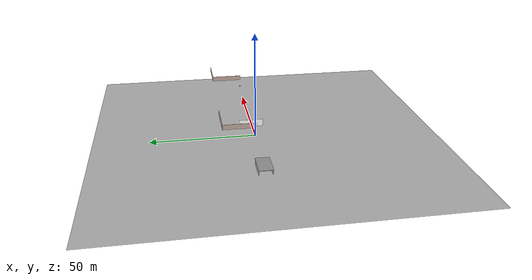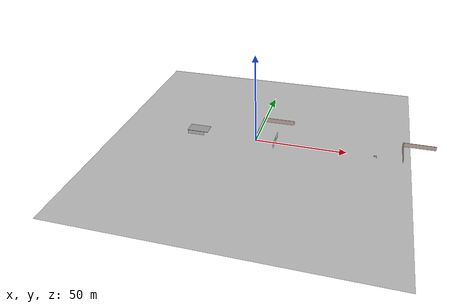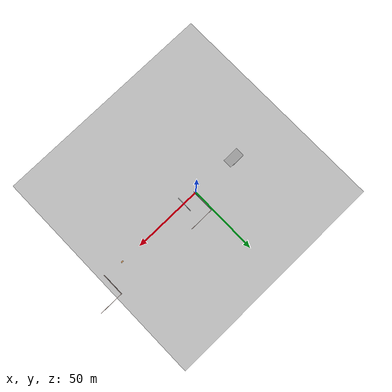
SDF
<sdf version="1.5">
 <world name="default">
  <spherical_coordinates>
   <latitude_deg>48.878922</latitude_deg>
   <longitude_deg>2.367782</longitude_deg>
  </spherical_coordinates>
  <physics type="ode">
   <real_time_update_rate>1000</real_time_update_rate>
   <max_step_size>0.001</max_step_size>
   <real_time_factor>1.0</real_time_factor>
   <max_contacts>20</max_contacts>
   <gravity>0 0 -9.81</gravity>
   <magnetic_field>0.1062e-6 20.8038e-6 -43.2881e-6</magnetic_field>
   <ode>
    <solver>
     <type>world</type>
     <min_step_size>0.0001</min_step_size>
     <iters>50</iters>
     <precon_iters>0</precon_iters>
     <sor>1.4</sor>
     <use_dynamic_moi_rescaling>1</use_dynamic_moi_rescaling>
    </solver>
    <constraints>
     <cfm>0</cfm>
     <erp>0.2</erp>
     <contact_max_correcting_vel>100.0</contact_max_correcting_vel>
     <contact_surface_layer>0.001</contact_surface_layer>
    </constraints>
   </ode>
  </physics>
  <atmosphere type="adiabatic">
   <temperature>298.15</temperature>
   <pressure>101325</pressure>
   <temperature_gradient>-0.0065</temperature_gradient>
  </atmosphere>
  <plugin name="fwman" filename="libsphinx_fwman.so">
   <spawn_point name="default"><pose>0 0 0.2 0 0 0</pose></spawn_point>
  </plugin>
  <plugin name="wind" filename="libsphinx_wind.so">
   <magnitude_mean>0.0</magnitude_mean>
   <direction_mean>0.0</direction_mean>
   <elevation_mean>0.0</elevation_mean>
   <magnitude_time_for_rise>10.0</magnitude_time_for_rise>
   <direction_time_for_rise>30.0</direction_time_for_rise>
   <elevation_time_for_rise>0.0</elevation_time_for_rise>
   <magnitude_expr>val*(1+0.05*sin(2*pi*time/15))</magnitude_expr>
   <direction_expr>360*time/60</direction_expr>
   <elevation_expr>0.03*noise()</elevation_expr>
  </plugin>
  <include><uri>model://grass_plane</uri></include>
  <include><uri>model://sun</uri></include>
  <scene>
   <sky><time>8</time><clouds><speed>12</speed></clouds></sky>
   <grid>false</grid>
   <origin_visual>false</origin_visual>
  </scene>
  <model name="hallway">
   <static>true</static>
   <pose>-33 3.5 -1.0 0 0 0</pose>
   <include><uri>model://hallway</uri></include>
  </model>
  <model name="wall1">
   <static>true</static>
   <pose>11.18 5.7 3.49 0 0 0</pose>
   <include><uri>model://wall</uri></include>
  </model>
  <model name="window">
   <static>true</static>
   <pose>9.3 0.7 0 0 0 1.57</pose>
   <include><uri>model://window_door</uri></include>
  </model>
  <model name="table">
   <static>true</static>
   <pose>65 -0.5 0 0 0 0</pose>
   <include><uri>model://table</uri></include>
  </model>
  <model name="wall2">
   <static>true</static>
   <pose>89 4 0 0 0 0</pose>
   <include><uri>model://wall</uri></include>
  </model>
 </world>
</sdf>

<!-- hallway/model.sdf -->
<sdf version="1.5">
  <model name="model">
    <pose>-1.08827 -2.32025 2.24903 0 -0 0</pose>
    <link name="unit_box_2">
      <pose>0.676422 -0.058315 0.998142 0 -0 0</pose>
      <gravity>1</gravity>
      <self_collide>0</self_collide>
      <kinematic>0</kinematic>
      <visual name="unit_box_2_visual">
        <pose>0 0 0 0 -0 0</pose>
        <geometry>
          <box>
            <size>11.8887 6.43251 0.213817</size>
          </box>
        </geometry>
        <material>
          <script>
            <uri>model://hallway/materials/scripts</uri>
            <uri>model://hallway/materials/textures</uri>
            <name>Gazebo/Grey</name>
          </script>
        </material>
      </visual>
      <collision name="unit_box_2_collision">
        <geometry>
          <box>
            <size>11.8887 6.43251 0.213817</size>
          </box>
        </geometry>
        <pose>0 0 0 0 -0 0</pose>
      </collision>
    </link>
    <link name="unit_box_0_clone">
      <pose>-0.332631 -3.03844 -0.499071 0 0 -1.56509</pose>
      <gravity>1</gravity>
      <self_collide>0</self_collide>
      <kinematic>0</kinematic>
      <visual name="unit_box_0_clone_visual">
        <pose>0 0 0 0 -0 0</pose>
        <geometry>
          <box>
            <size>0.193816 9.597 2.74108</size>
          </box>
        </geometry>
        <material>
          <script>
            <uri>model://hallway/materials/scripts</uri>
            <uri>model://hallway/materials/textures</uri>
            <name>Wall/TagWall</name>
          </script>
        </material>
      </visual>
      <collision name="unit_box_0_clone_collision">
        <geometry>
          <box>
            <size>0.193816 9.597 2.74108</size>
          </box>
        </geometry>
        <pose>0 0 0 0 -0 0</pose>
      </collision>
    </link>
    <link name="unit_box_0">
      <pose>-0.343791 3.09675 -0.499071 0 0 -1.5627</pose>
      <gravity>1</gravity>
      <self_collide>0</self_collide>
      <kinematic>0</kinematic>
      <visual name="unit_box_0_visual">
        <pose>0 0 0 0 -0 0</pose>
        <geometry>
          <box>
            <size>0.193816 9.597 2.74108</size>
          </box>
        </geometry>
        <material>
          <script>
            <uri>model://hallway/materials/scripts</uri>
            <uri>model://hallway/materials/textures</uri>
            <name>Wall/TagWall</name>
          </script>
        </material>
      </visual>
      <collision name="unit_box_0_collision">
        <geometry>
          <box>
            <size>0.193816 9.597 2.74108</size>
          </box>
        </geometry>
        <pose>0 0 0 0 -0 0</pose>
      </collision>
    </link>
    <joint name="unit_box_2_JOINT_7" type="universal">
      <parent>unit_box_2</parent>
      <child>unit_box_0</child>
      <axis>
        <xyz>1 0 0</xyz>
        <use_parent_model_frame>0</use_parent_model_frame>
        <limit>
          <lower>-3.14</lower>
          <upper>3.14</upper>
        </limit>
      </axis>
      <pose>0 0 0 0 -0 0</pose>
      <axis2>
        <xyz>0 1 0</xyz>
        <use_parent_model_frame>0</use_parent_model_frame>
        <limit>
          <lower>-3.14</lower>
          <upper>3.14</upper>
        </limit>
      </axis2>
    </joint>
    <joint name="unit_box_2_JOINT_6" type="universal">
      <parent>unit_box_2</parent>
      <child>unit_box_0_clone</child>
      <axis>
        <xyz>1 0 0</xyz>
        <use_parent_model_frame>0</use_parent_model_frame>
        <limit>
          <lower>-3.14</lower>
          <upper>3.14</upper>
        </limit>
      </axis>
      <pose>0 0 0 0 -0 0</pose>
      <axis2>
        <xyz>0 1 0</xyz>
        <use_parent_model_frame>0</use_parent_model_frame>
        <limit>
          <lower>-3.14</lower>
          <upper>3.14</upper>
        </limit>
      </axis2>
    </joint>
    <joint name="unit_box_0_clone_JOINT_5" type="universal">
      <parent>unit_box_0_clone</parent>
      <child>unit_box_0</child>
      <axis>
        <xyz>1 0 0</xyz>
        <use_parent_model_frame>0</use_parent_model_frame>
        <limit>
          <lower>-3.14</lower>
          <upper>3.14</upper>
        </limit>
      </axis>
      <pose>0 0 0 0 -0 0</pose>
      <axis2>
        <xyz>0 1 0</xyz>
        <use_parent_model_frame>0</use_parent_model_frame>
        <limit>
          <lower>-3.14</lower>
          <upper>3.14</upper>
        </limit>
      </axis2>
    </joint>
    <joint name="unit_box_0_clone_JOINT_3" type="universal">
      <parent>unit_box_0_clone</parent>
      <child>unit_box_2</child>
      <axis>
        <xyz>1 0 0</xyz>
        <use_parent_model_frame>0</use_parent_model_frame>
        <limit>
          <lower>-3.14</lower>
          <upper>3.14</upper>
        </limit>
      </axis>
      <pose>0 0 0 0 -0 0</pose>
      <axis2>
        <xyz>0 1 0</xyz>
        <use_parent_model_frame>0</use_parent_model_frame>
        <limit>
          <lower>-3.14</lower>
          <upper>3.14</upper>
        </limit>
      </axis2>
    </joint>
    <joint name="unit_box_0_JOINT_2" type="universal">
      <parent>unit_box_0</parent>
      <child>unit_box_0_clone</child>
      <axis>
        <xyz>1 0 0</xyz>
        <use_parent_model_frame>0</use_parent_model_frame>
        <limit>
          <lower>-3.14</lower>
          <upper>3.14</upper>
        </limit>
      </axis>
      <pose>0 0 0 0 -0 0</pose>
      <axis2>
        <xyz>0 1 0</xyz>
        <use_parent_model_frame>0</use_parent_model_frame>
        <limit>
          <lower>-3.14</lower>
          <upper>3.14</upper>
        </limit>
      </axis2>
    </joint>
    <joint name="unit_box_0_JOINT_4" type="universal">
      <parent>unit_box_0</parent>
      <child>unit_box_2</child>
      <axis>
        <xyz>1 0 0</xyz>
        <use_parent_model_frame>0</use_parent_model_frame>
        <limit>
          <lower>-3.14</lower>
          <upper>3.14</upper>
        </limit>
      </axis>
      <pose>0 0 0 0 -0 0</pose>
      <axis2>
        <xyz>0 1 0</xyz>
        <use_parent_model_frame>0</use_parent_model_frame>
        <limit>
          <lower>-3.14</lower>
          <upper>3.14</upper>
        </limit>
      </axis2>
    </joint>
    <joint name="unit_box_2_JOINT_1" type="universal">
      <parent>unit_box_2</parent>
      <child>unit_box_0_clone</child>
      <axis>
        <xyz>1 0 0</xyz>
        <use_parent_model_frame>0</use_parent_model_frame>
        <limit>
          <lower>-3.14</lower>
          <upper>3.14</upper>
        </limit>
      </axis>
      <pose>0 0 0 0 -0 0</pose>
      <axis2>
        <xyz>0 1 0</xyz>
        <use_parent_model_frame>0</use_parent_model_frame>
        <limit>
          <lower>-3.14</lower>
          <upper>3.14</upper>
        </limit>
      </axis2>
    </joint>
    <joint name="unit_box_2_JOINT_0" type="universal">
      <parent>unit_box_2</parent>
      <child>unit_box_0</child>
      <axis>
        <xyz>1 0 0</xyz>
        <use_parent_model_frame>0</use_parent_model_frame>
        <limit>
          <lower>-3.14</lower>
          <upper>3.14</upper>
        </limit>
      </axis>
      <pose>0 0 0 0 -0 0</pose>
      <axis2>
        <xyz>0 1 0</xyz>
        <use_parent_model_frame>0</use_parent_model_frame>
        <limit>
          <lower>-3.14</lower>
          <upper>3.14</upper>
        </limit>
      </axis2>
    </joint>
    <static>1</static>
    <allow_auto_disable>1</allow_auto_disable>
  </model>
</sdf>

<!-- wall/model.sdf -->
<sdf version='1.6'>
  <model name='wall'>
    <pose frame=''>-1.26581 1.80502 0 0 -0 0</pose>
    <link name='Wall_0'>
      <collision name='Wall_0_Collision'>
        <geometry>
          <box>
            <size>16.5 0.15 2.5</size>
          </box>
        </geometry>
        <pose frame=''>0 0 1.25 0 -0 0</pose>
      </collision>
      <visual name='Wall_0_Visual'>
        <pose frame=''>0 0 1.25 0 -0 0</pose>
        <geometry>
          <box>
            <size>16.5 0.15 2.5</size>
          </box>
        </geometry>
        <material>
          <script>
            <uri>file://media/materials/scripts/gazebo.material</uri>
            <name>Gazebo/Grey</name>
          </script>
          <ambient>0.760784 0.662745 0.627451 1</ambient>
        </material>
        <meta>
          <layer>0</layer>
        </meta>
      </visual>
      <pose frame=''>-8.71419 -1.8e-05 0 0 0 -1.5708</pose>
    </link>
    <link name='Wall_2'>
      <collision name='Wall_2_Collision'>
        <geometry>
          <box>
            <size>17.5784 0.15 2.5</size>
          </box>
        </geometry>
        <pose frame=''>0 0 1.25 0 -0 0</pose>
      </collision>
      <visual name='Wall_2_Visual'>
        <pose frame=''>0 0 1.25 0 -0 0</pose>
        <geometry>
          <box>
            <size>17.5784 0.15 2.5</size>
          </box>
        </geometry>
        <material>
          <script>
            <uri>file://media/materials/scripts/gazebo.material</uri>
            <name>Gazebo/Grey</name>
          </script>
          <ambient>0.760784 0.662745 0.627451 1</ambient>
        </material>
        <meta>
          <layer>0</layer>
        </meta>
      </visual>
      <pose frame=''>0 8.17066 0 0 0 -0.000496</pose>
    </link>
    <static>1</static>
  </model>
</sdf>

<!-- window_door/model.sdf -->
<sdf version="1.5">
  <model name="window2">
    <pose>-0.12 -1.66 0 0 -0 0</pose>
    <link name="Wall_0">
      <pose>-0 0 0 0 -0 0</pose>
      <visual name="Wall_0_Visual_0">
        <pose>-3.2425 0 1.75 0 -0 0</pose>
        <geometry>
          <box>
            <size>5.265 0.15 3.5</size>
          </box>
        </geometry>
        <material>
          <script>
            <uri>model://window_door/materials/scripts</uri>
            <uri>model://window_door/materials/textures</uri>
            <name>Wall/NiceWall</name>
          </script>
          <ambient>1 1 1 1</ambient>
        </material>
      </visual>
      <collision name="Wall_0_Collision_0">
        <geometry>
          <box>
            <size>5.265 0.15 3.5</size>
          </box>
        </geometry>
        <pose>-3.2425 0 1.75 0 -0 0</pose>
      </collision>
      <visual name="Wall_0_Visual_1">
        <pose>2.6325 0 0.6 0 -0 0</pose>
        <geometry>
          <box>
            <size>6.485 0.15 1.2</size>
          </box>
        </geometry>
        <material>
          <script>
            <uri>model://window_door/materials/scripts</uri>
            <uri>model://window_door/materials/textures</uri>
            <name>Wall/NiceWall</name>
          </script>
          <ambient>1 1 1 1</ambient>
        </material>
      </visual>
      <collision name="Wall_0_Collision_1">
        <geometry>
          <box>
            <size>6.485 0.15 1.2</size>
          </box>
        </geometry>
        <pose>2.6325 0 0.6 0 -0 0</pose>
      </collision>
      <visual name="Wall_0_Visual_2">
        <pose>3.2325 0 2.35 0 -0 0</pose>
        <geometry>
          <box>
            <size>5.285 0.15 2.3</size>
          </box>
        </geometry>
        <material>
          <script>
            <uri>model://window_door/materials/scripts</uri>
            <uri>model://window_door/materials/textures</uri>
            <name>Wall/NiceWall</name>
          </script>
          <ambient>1 1 1 1</ambient>
        </material>
      </visual>
      <collision name="Wall_0_Collision_2">
        <geometry>
          <box>
            <size>5.285 0.15 2.3</size>
          </box>
        </geometry>
        <pose>3.2325 0 2.35 0 -0 0</pose>
      </collision>
      <visual name="Wall_0_Visual_3">
        <pose>-0.01 0 2.95 0 -0 0</pose>
        <geometry>
          <box>
            <size>1.2 0.15 1.1</size>
          </box>
        </geometry>
        <material>
          <script>
            <uri>model://window_door/materials/scripts</uri>
            <uri>model://window_door/materials/textures</uri>
            <name>Wall/NiceWall</name>
          </script>
          <ambient>1 1 1 1</ambient>
        </material>
      </visual>
      <collision name="Wall_0_Collision_3">
        <geometry>
          <box>
            <size>1.2 0.15 1.1</size>
          </box>
        </geometry>
        <pose>-0.01 0 2.95 0 -0 0</pose>
      </collision>
    </link>
    <static>1</static>
  </model>
</sdf>

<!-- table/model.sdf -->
<sdf version="1.5">
  <model name="table">
    <static>true</static>
    <link name="link">
      <collision name="surface">
        <pose>0 0 1.0 0 0 0</pose>
        <geometry>
          <box>
            <size>1.5 0.8 0.03</size>
          </box>
        </geometry>
        <surface>
          <friction>
            <ode>
              <mu>0.6</mu>
              <mu2>0.6</mu2>
            </ode>
          </friction>
        </surface>
      </collision>
      <visual name="visual1">
        <pose>0 0 1.0 0 0 0</pose>
        <geometry>
          <box>
            <size>1.5 0.8 0.03</size>
          </box>
        </geometry>
        <material>
          <script>
            <uri>model://media/materials/scripts/gazebo.material</uri>
            <name>Gazebo/Wood</name>
          </script>
        </material>
      </visual>
      <collision name="front_left_leg">
        <pose>0.68 0.38 0.5 0 0 0</pose>
        <geometry>
          <cylinder>
            <radius>0.02</radius>
            <length>1.0</length>
          </cylinder>
        </geometry>
      </collision>
      <visual name="front_left_leg">
        <pose>0.68 0.38 0.5 0 0 0</pose>
        <geometry>
          <cylinder>
            <radius>0.02</radius>
            <length>1.0</length>
          </cylinder>
        </geometry>
        <material>
          <script>
            <uri>model://media/materials/scripts/gazebo.material</uri>
            <name>Gazebo/Grey</name>
          </script>
        </material>
      </visual>
      <collision name="front_right_leg">
        <pose>0.68 -0.38 0.5 0 0 0</pose>
        <geometry>
          <cylinder>
            <radius>0.02</radius>
            <length>1.0</length>
          </cylinder>
        </geometry>
      </collision>
      <visual name="front_right_leg">
        <pose>0.68 -0.38 0.5 0 0 0</pose>
        <geometry>
          <cylinder>
            <radius>0.02</radius>
            <length>1.0</length>
          </cylinder>
        </geometry>
        <material>
          <script>
            <uri>model://media/materials/scripts/gazebo.material</uri>
            <name>Gazebo/Grey</name>
          </script>
        </material>
      </visual>
      <collision name="back_right_leg">
        <pose>-0.68 -0.38 0.5 0 0 0</pose>
        <geometry>
          <cylinder>
            <radius>0.02</radius>
            <length>1.0</length>
          </cylinder>
        </geometry>
      </collision>
      <visual name="back_right_leg">
        <pose>-0.68 -0.38 0.5 0 0 0</pose>
        <geometry>
          <cylinder>
            <radius>0.02</radius>
            <length>1.0</length>
          </cylinder>
        </geometry>
        <material>
          <script>
            <uri>model://media/materials/scripts/gazebo.material</uri>
            <name>Gazebo/Grey</name>
          </script>
        </material>
      </visual>
      <collision name="back_left_leg">
        <pose>-0.68 0.38 0.5 0 0 0</pose>
        <geometry>
          <cylinder>
            <radius>0.02</radius>
            <length>1.0</length>
          </cylinder>
        </geometry>
      </collision>
      <visual name="back_left_leg">
        <pose>-0.68 0.38 0.5 0 0 0</pose>
        <geometry>
          <cylinder>
            <radius>0.02</radius>
            <length>1.0</length>
          </cylinder>
        </geometry>
        <material>
          <script>
            <uri>model://media/materials/scripts/gazebo.material</uri>
            <name>Gazebo/Grey</name>
          </script>
        </material>
      </visual>
    </link>
  </model>
</sdf>

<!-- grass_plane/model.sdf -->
<sdf version="1.4">
  <model name="grass_plane">
    <static>true</static>
    <link name="link">
      <collision name="collision">
        <geometry>
          <plane>
            <normal>0 0 1</normal>
            <size>750 750</size>
          </plane>
        </geometry>
        <surface>
          <friction>
            <ode>
              <mu>0.5</mu>
              <mu2>.5</mu2>
            </ode>
          </friction>
        </surface>
      </collision>

      <visual name="visual_0">
        <pose>2 -5 0 0 0 0</pose>

        <cast_shadows>false</cast_shadows>
        <geometry>
          <mesh>
            <uri>model://grass_plane/meshes/grass_plane.dae</uri>
            <scale>3 3 1</scale>
          </mesh>
        </geometry>
      </visual>
    </link>
  </model>
</sdf>
